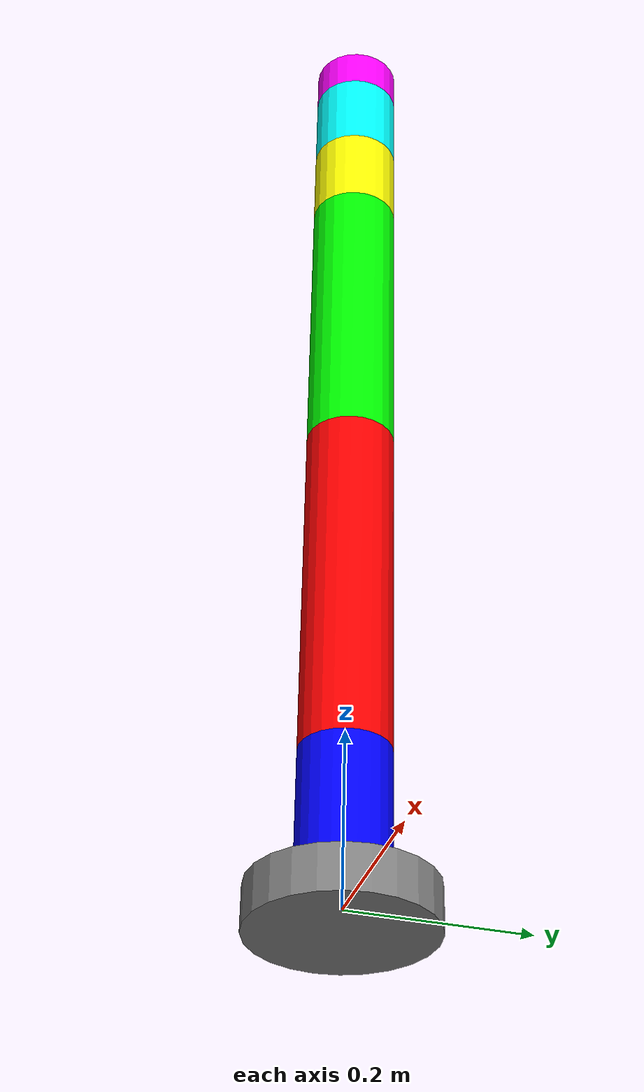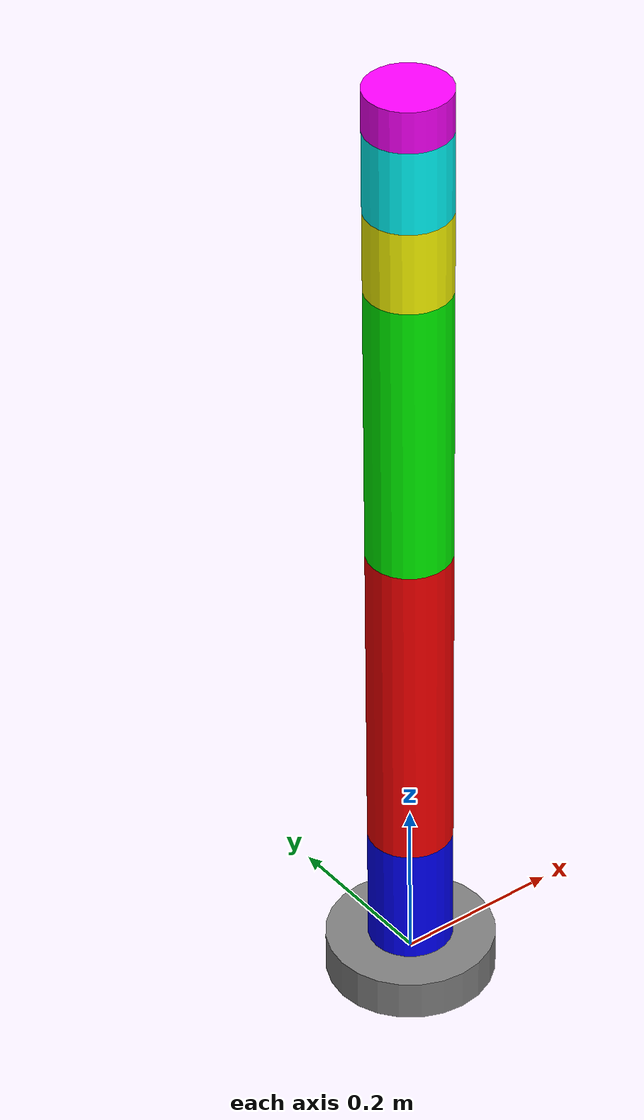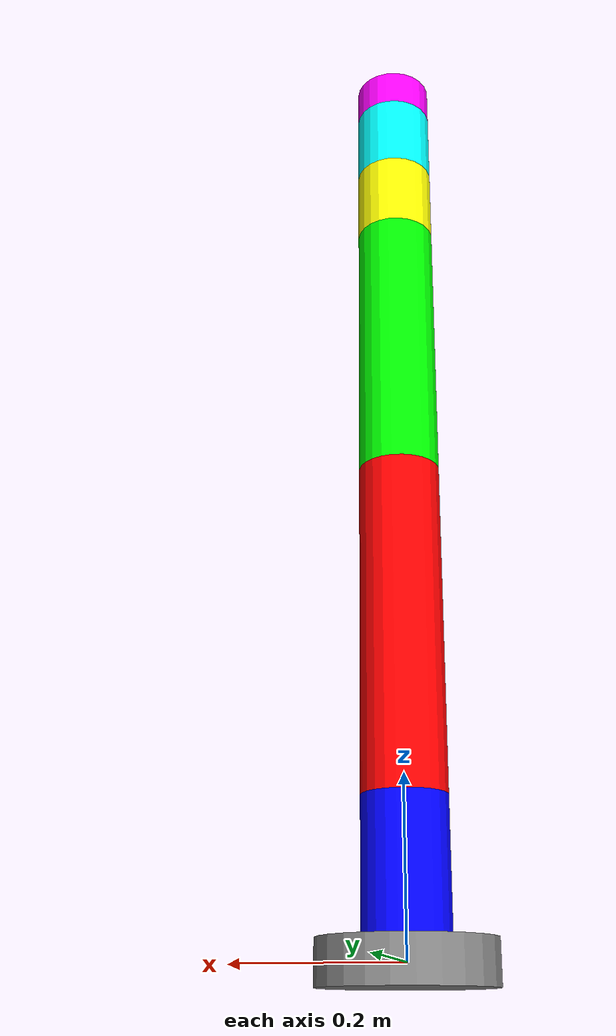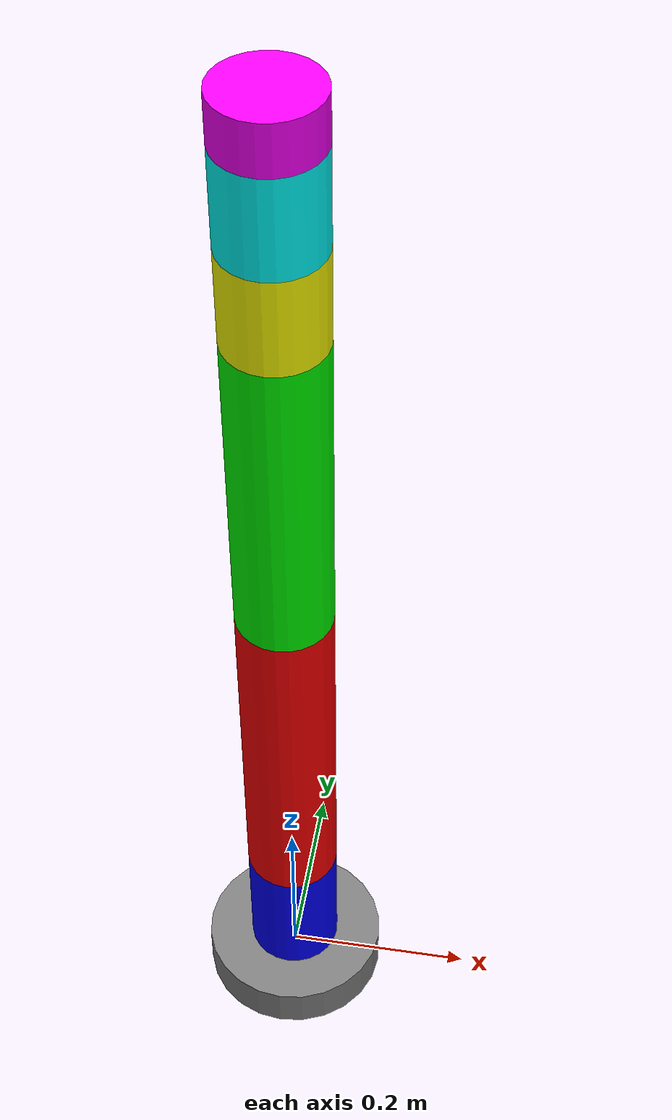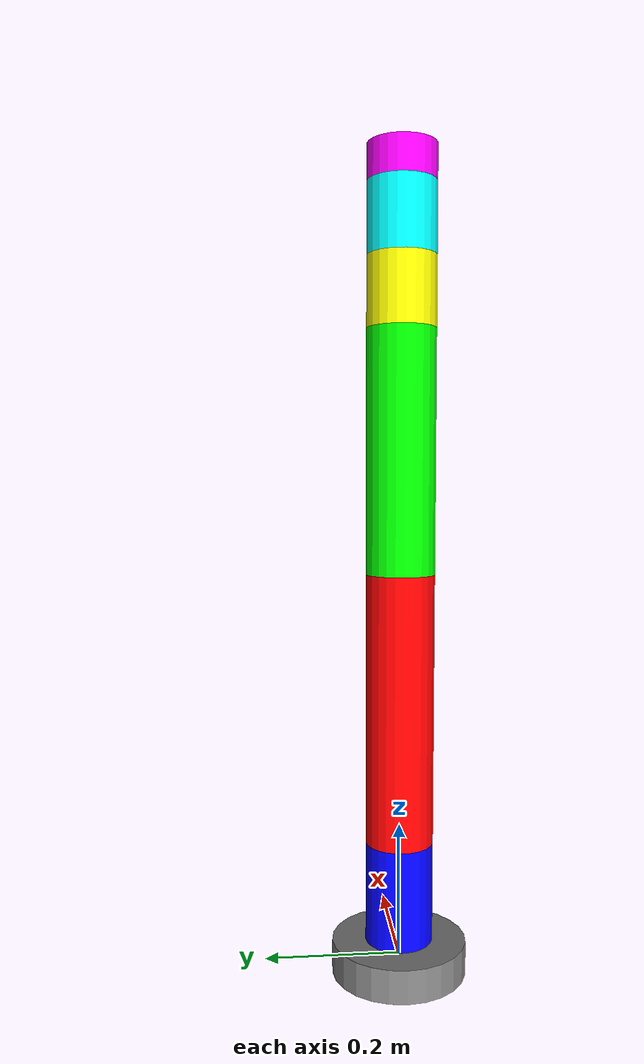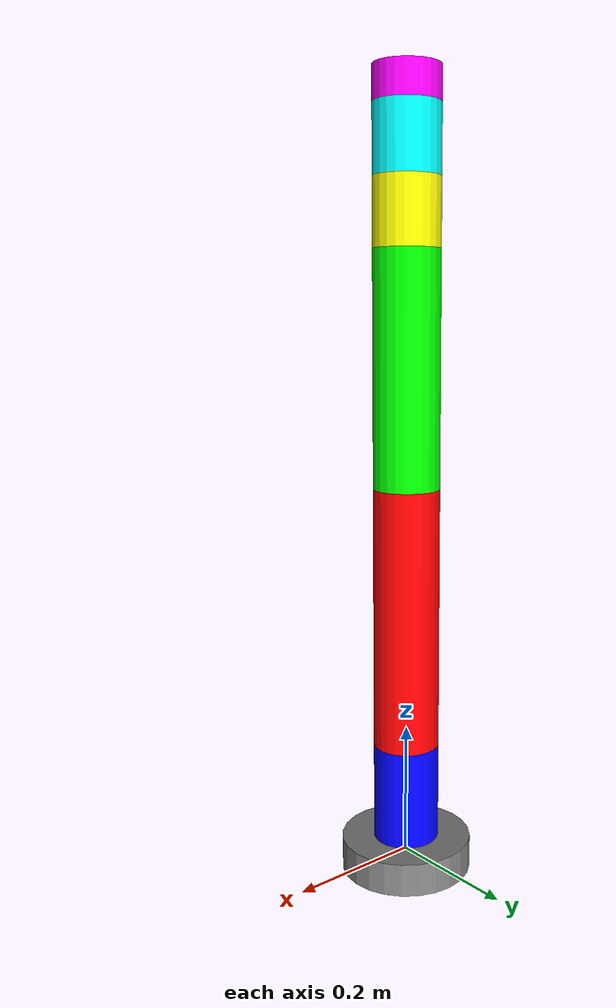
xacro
<?xml version="1.0"?>
<robot xmlns:xacro="http://wiki.ros.org/xacro" name="my_robot">

  <!-- Import ros2_control description -->
  <xacro:include filename="$(find my_robot_description)/urdf/my_robot.ros2_control.xacro" />

  <!-- Parameters -->
  <xacro:property name="link_1_length" value="0.15" />
  <xacro:property name="link_2_length" value="0.4" />
  <xacro:property name="link_3_length" value="0.35" />
  <xacro:property name="link_4_length" value="0.1" />
  <xacro:property name="link_5_length" value="0.1" />
  <xacro:property name="link_6_length" value="0.05" />
  <xacro:property name="radius" value="0.05" />

  <!-- Base Link -->
  <link name="base_link">
    <visual>
      <geometry>
        <cylinder length="0.05" radius="0.1"/>
      </geometry>
      <material name="Gray">
        <color rgba="0.5 0.5 0.5 1.0"/>
      </material>
    </visual>
    <collision>
      <geometry>
        <cylinder length="0.05" radius="0.1"/>
      </geometry>
    </collision>
    <inertial>
      <mass value="4.0"/>
      <inertia ixx="0.01" ixy="0.0" ixz="0.0" iyy="0.01" iyz="0.0" izz="0.01"/>
    </inertial>
  </link>

  <!-- Joint 1 -->
  <joint name="joint_1" type="revolute">
    <parent link="base_link"/>
    <child link="link_1"/>
    <origin xyz="0 0 0.025" rpy="0 0 0"/>
    <axis xyz="0 0 1"/>
    <limit lower="-3.14" upper="3.14" effort="150.0" velocity="3.14"/>
    <dynamics damping="0.0" friction="0.0"/>
  </joint>

  <link name="link_1">
    <visual>
      <origin xyz="0 0 ${link_1_length/2}" rpy="0 0 0"/>
      <geometry>
        <cylinder length="${link_1_length}" radius="${radius}"/>
      </geometry>
      <material name="Blue">
        <color rgba="0.0 0.0 1.0 1.0"/>
      </material>
    </visual>
    <collision>
      <origin xyz="0 0 ${link_1_length/2}" rpy="0 0 0"/>
      <geometry>
        <cylinder length="${link_1_length}" radius="${radius}"/>
      </geometry>
    </collision>
    <inertial>
      <mass value="3.7"/>
      <inertia ixx="0.01" ixy="0.0" ixz="0.0" iyy="0.01" iyz="0.0" izz="0.01"/>
    </inertial>
  </link>

  <!-- Joint 2 -->
  <joint name="joint_2" type="revolute">
    <parent link="link_1"/>
    <child link="link_2"/>
    <origin xyz="0 0 ${link_1_length}" rpy="0 0 0"/>
    <axis xyz="0 1 0"/>
    <limit lower="-3.14" upper="3.14" effort="150.0" velocity="3.14"/>
    <dynamics damping="0.0" friction="0.0"/>
  </joint>

  <link name="link_2">
    <visual>
      <origin xyz="0 0 ${link_2_length/2}" rpy="0 0 0"/>
      <geometry>
        <cylinder length="${link_2_length}" radius="${radius}"/>
      </geometry>
      <material name="Red">
        <color rgba="1.0 0.0 0.0 1.0"/>
      </material>
    </visual>
    <collision>
      <origin xyz="0 0 ${link_2_length/2}" rpy="0 0 0"/>
      <geometry>
        <cylinder length="${link_2_length}" radius="${radius}"/>
      </geometry>
    </collision>
    <inertial>
      <mass value="8.3"/>
      <inertia ixx="0.01" ixy="0.0" ixz="0.0" iyy="0.01" iyz="0.0" izz="0.01"/>
    </inertial>
  </link>

  <!-- Joint 3 -->
  <joint name="joint_3" type="revolute">
    <parent link="link_2"/>
    <child link="link_3"/>
    <origin xyz="0 0 ${link_2_length}" rpy="0 0 0"/>
    <axis xyz="0 1 0"/>
    <limit lower="-3.14" upper="3.14" effort="150.0" velocity="3.14"/>
    <dynamics damping="0.0" friction="0.0"/>
  </joint>

  <link name="link_3">
    <visual>
      <origin xyz="0 0 ${link_3_length/2}" rpy="0 0 0"/>
      <geometry>
        <cylinder length="${link_3_length}" radius="${radius}"/>
      </geometry>
      <material name="Green">
        <color rgba="0.0 1.0 0.0 1.0"/>
      </material>
    </visual>
    <collision>
      <origin xyz="0 0 ${link_3_length/2}" rpy="0 0 0"/>
      <geometry>
        <cylinder length="${link_3_length}" radius="${radius}"/>
      </geometry>
    </collision>
    <inertial>
      <mass value="2.4"/>
      <inertia ixx="0.01" ixy="0.0" ixz="0.0" iyy="0.01" iyz="0.0" izz="0.01"/>
    </inertial>
  </link>

  <!-- Joint 4 -->
  <joint name="joint_4" type="revolute">
    <parent link="link_3"/>
    <child link="link_4"/>
    <origin xyz="0 0 ${link_3_length}" rpy="0 0 0"/>
    <axis xyz="0 1 0"/>
    <limit lower="-3.14" upper="3.14" effort="28.0" velocity="3.14"/>
    <dynamics damping="0.0" friction="0.0"/>
  </joint>

  <link name="link_4">
    <visual>
      <origin xyz="0 0 ${link_4_length/2}" rpy="0 0 0"/>
      <geometry>
        <cylinder length="${link_4_length}" radius="${radius}"/>
      </geometry>
      <material name="Yellow">
        <color rgba="1.0 1.0 0.0 1.0"/>
      </material>
    </visual>
    <collision>
      <origin xyz="0 0 ${link_4_length/2}" rpy="0 0 0"/>
      <geometry>
        <cylinder length="${link_4_length}" radius="${radius}"/>
      </geometry>
    </collision>
    <inertial>
      <mass value="1.2"/>
      <inertia ixx="0.01" ixy="0.0" ixz="0.0" iyy="0.01" iyz="0.0" izz="0.01"/>
    </inertial>
  </link>

  <!-- Joint 5 -->
  <joint name="joint_5" type="revolute">
    <parent link="link_4"/>
    <child link="link_5"/>
    <origin xyz="0 0 ${link_4_length}" rpy="0 0 0"/>
    <axis xyz="0 0 1"/>
    <limit lower="-3.14" upper="3.14" effort="28.0" velocity="3.14"/>
    <dynamics damping="0.0" friction="0.0"/>
  </joint>

  <link name="link_5">
    <visual>
      <origin xyz="0 0 ${link_5_length/2}" rpy="0 0 0"/>
      <geometry>
        <cylinder length="${link_5_length}" radius="${radius}"/>
      </geometry>
      <material name="Cyan">
        <color rgba="0.0 1.0 1.0 1.0"/>
      </material>
    </visual>
    <collision>
      <origin xyz="0 0 ${link_5_length/2}" rpy="0 0 0"/>
      <geometry>
        <cylinder length="${link_5_length}" radius="${radius}"/>
      </geometry>
    </collision>
    <inertial>
      <mass value="1.2"/>
      <inertia ixx="0.01" ixy="0.0" ixz="0.0" iyy="0.01" iyz="0.0" izz="0.01"/>
    </inertial>
  </link>

  <!-- Joint 6 -->
  <joint name="joint_6" type="revolute">
    <parent link="link_5"/>
    <child link="link_6"/>
    <origin xyz="0 0 ${link_5_length}" rpy="0 0 0"/>
    <axis xyz="0 1 0"/>
    <limit lower="-3.14" upper="3.14" effort="28.0" velocity="3.14"/>
    <dynamics damping="0.0" friction="0.0"/>
  </joint>

  <link name="link_6">
    <visual>
      <origin xyz="0 0 ${link_6_length/2}" rpy="0 0 0"/>
      <geometry>
        <cylinder length="${link_6_length}" radius="${radius}"/>
      </geometry>
      <material name="Magenta">
        <color rgba="1.0 0.0 1.0 1.0"/>
      </material>
    </visual>
    <collision>
      <origin xyz="0 0 ${link_6_length/2}" rpy="0 0 0"/>
      <geometry>
        <cylinder length="${link_6_length}" radius="${radius}"/>
      </geometry>
    </collision>
    <inertial>
      <mass value="0.2"/>
      <inertia ixx="0.01" ixy="0.0" ixz="0.0" iyy="0.01" iyz="0.0" izz="0.01"/>
    </inertial>
  </link>

  <!-- Tool Frame -->
  <joint name="tool0_joint" type="fixed">
    <parent link="link_6"/>
    <child link="tool0"/>
    <origin xyz="0 0 ${link_6_length}" rpy="0 0 0"/>
  </joint>

  <link name="tool0"/>

  <!-- ros2_control integration -->
  <xacro:my_robot_ros2_control name="MyRobotFakeSystem" prefix=""/>

</robot>
